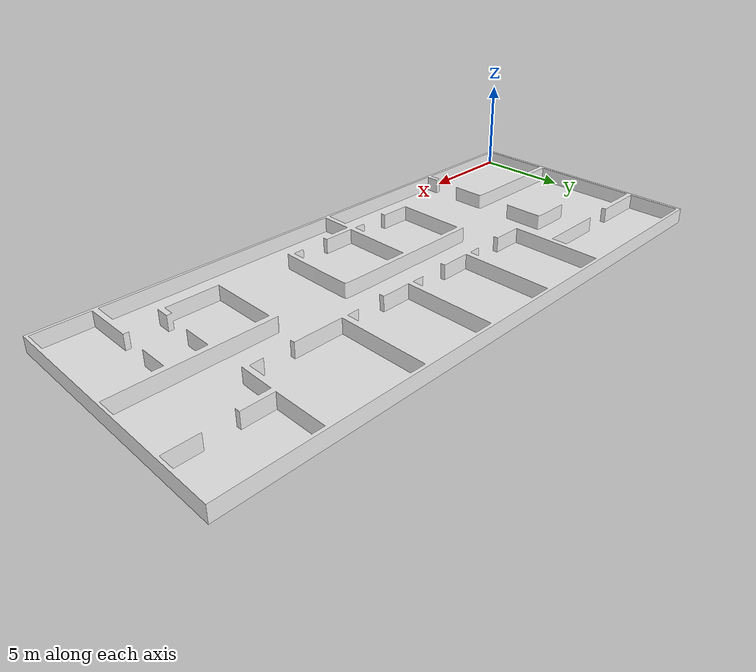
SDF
<sdf version="1.4">
  <model name="hospital_walls">
    <static>1</static>
    <link name="link">

      <collision name="colision1">
        <pose>0 0 0 0 0 0</pose>
        <geometry>
          <mesh>
            <uri>model://hospital_walls/hospital.dae</uri>
	    <scale> 1 1 1 </scale>
          </mesh>
        </geometry>
        <surface>
          <bounce />
          <friction>
            <ode />
          </friction>
          <contact>
            <ode />
          </contact>
        </surface>
      </collision>

      <visual name="visual1">
        <pose>0 0 0 0 0 0</pose>
        <geometry>
          <mesh>
            <uri>model://hospital_walls/hospital.dae</uri>
	    <scale> 1 1 1 </scale>
          </mesh>
        </geometry>
        <material>
          <script>
            <uri>file://media/materials/scripts/gazebo.material</uri>
            <name>Gazebo/White</name>
          </script>
        </material>
      </visual>

      <velocity_decay>
        <linear>0.000000</linear>
        <angular>0.000000</angular>
      </velocity_decay>
      <self_collide>0</self_collide>
      <kinematic>0</kinematic>
      <gravity>0</gravity>
    </link>
  </model>
</sdf>
